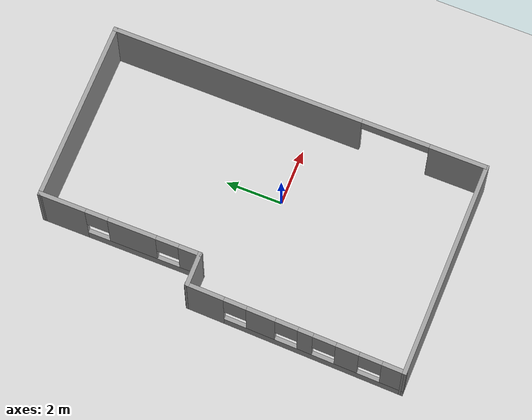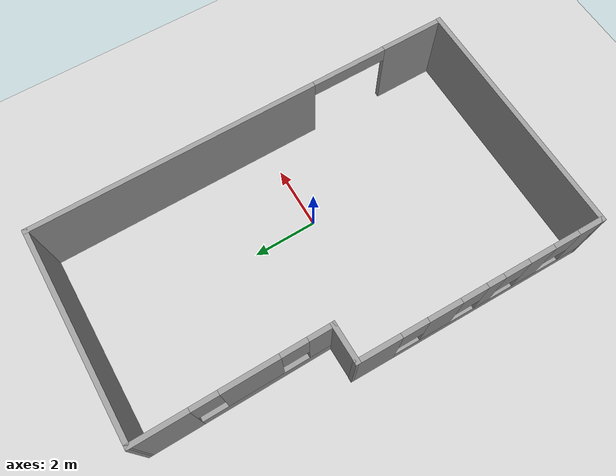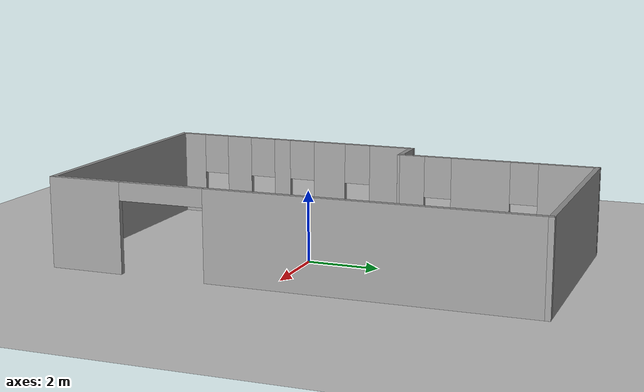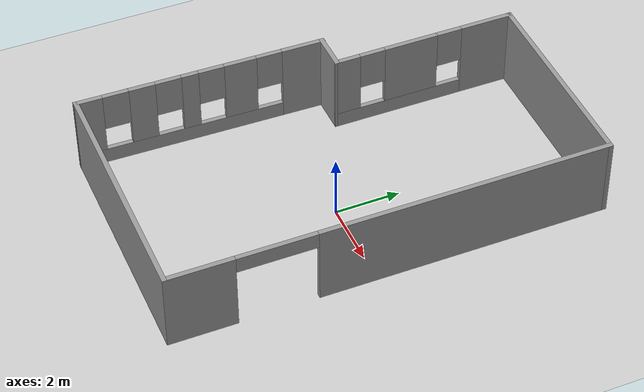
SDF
<sdf version="1.6">
 <world name="AulaGamma_homework2">
  <light name="sun" type="directional">
   <pose>0 0 10 0 -0 0</pose>
   <diffuse>0.8 0.8 0.8 1</diffuse>
   <specular>0.1 0.1 0.1 1</specular>
   <attenuation>
    <range>1000</range>
    <constant>0.9</constant>
    <linear>0.01</linear>
    <quadratic>0.001</quadratic>
   </attenuation>
   <direction>-0.5 0.5 -1</direction>
  </light>
  <model name="ground_plane">
   <static>1</static>
   <link name="link">
    <collision name="collision">
     <geometry><plane><normal>0 0 1</normal><size>100 100</size></plane></geometry>
     <surface><friction><ode><mu>100</mu><mu2>50</mu2></ode></friction></surface>
    </collision>
    <visual name="visual">
     <cast_shadows>0</cast_shadows>
     <geometry><plane><normal>0 0 1</normal><size>100 100</size></plane></geometry>
     <material>
      <script><uri>file://media/materials/scripts/gazebo.material</uri><name>Gazebo/Grey</name></script>
     </material>
    </visual>
   </link>
  </model>
  <gravity>0 0 -9.8</gravity>
  <magnetic_field>6e-06 2.3e-05 -4.2e-05</magnetic_field>
  <atmosphere type="adiabatic"/>
  <physics name="default_physics" default="0" type="ode">
   <max_step_size>0.001</max_step_size>
   <real_time_factor>1</real_time_factor>
   <real_time_update_rate>1000</real_time_update_rate>
  </physics>
  <scene><ambient>0.4 0.4 0.4 1</ambient><background>0.7 0.7 0.7 1</background><shadows>1</shadows></scene>
  <spherical_coordinates>
   <surface_model>EARTH_WGS84</surface_model>
   <latitude_deg>0</latitude_deg>
   <longitude_deg>0</longitude_deg>
   <elevation>0</elevation>
   <heading_deg>0</heading_deg>
  </spherical_coordinates>
  <model name="muri_aula_gamma">
   <pose>-0.930071 0.515969 0 0 -0 0</pose>
   <link name="Wall_10">
    <pose>-2.54777 3.82732 0 0 0 -1.57027</pose>
    <visual name="Wall_10_Visual_0">
     <pose>-2.07152 0 1.25 0 -0 0</pose>
     <geometry><box><size>1.70377 0.15 2.5</size></box></geometry>
     <material>
      <script><uri>file://media/materials/scripts/gazebo.material</uri><name>Gazebo/Grey</name></script>
      <ambient>1 1 1 1</ambient>
     </material>
    </visual>
    <collision name="Wall_10_Collision_0">
     <geometry><box><size>1.70377 0.15 2.5</size></box></geometry>
     <pose>-2.07152 0 1.25 0 -0 0</pose>
    </collision>
    <visual name="Wall_10_Visual_1">
     <pose>0.851884 0 0.25 0 -0 0</pose>
     <geometry><box><size>4.14304 0.15 0.5</size></box></geometry>
     <material>
      <script><uri>file://media/materials/scripts/gazebo.material</uri><name>Gazebo/Grey</name></script>
      <ambient>1 1 1 1</ambient>
     </material>
    </visual>
    <collision name="Wall_10_Collision_1">
     <geometry><box><size>4.14304 0.15 0.5</size></box></geometry>
     <pose>0.851884 0 0.25 0 -0 0</pose>
    </collision>
    <visual name="Wall_10_Visual_2">
     <pose>0.43961 0 1.5 0 -0 0</pose>
     <geometry><box><size>1.7185 0.15 2</size></box></geometry>
     <material>
      <script><uri>file://media/materials/scripts/gazebo.material</uri><name>Gazebo/Grey</name></script>
      <ambient>1 1 1 1</ambient>
     </material>
    </visual>
    <collision name="Wall_10_Collision_2">
     <geometry><box><size>1.7185 0.15 2</size></box></geometry>
     <pose>0.43961 0 1.5 0 -0 0</pose>
    </collision>
    <visual name="Wall_10_Visual_3">
     <pose>2.51113 0 1.5 0 -0 0</pose>
     <geometry><box><size>0.824549 0.15 2</size></box></geometry>
     <material>
      <script><uri>file://media/materials/scripts/gazebo.material</uri><name>Gazebo/Grey</name></script>
      <ambient>1 1 1 1</ambient>
     </material>
    </visual>
    <collision name="Wall_10_Collision_3">
     <geometry><box><size>0.824549 0.15 2</size></box></geometry>
     <pose>2.51113 0 1.5 0 -0 0</pose>
    </collision>
    <visual name="Wall_10_Visual_4">
     <pose>-0.819638 0 1.9 0 -0 0</pose>
     <geometry><box><size>0.8 0.15 1.2</size></box></geometry>
     <material>
      <script><uri>file://media/materials/scripts/gazebo.material</uri><name>Gazebo/Grey</name></script>
      <ambient>1 1 1 1</ambient>
     </material>
    </visual>
    <collision name="Wall_10_Collision_4">
     <geometry><box><size>0.8 0.15 1.2</size></box></geometry>
     <pose>-0.819638 0 1.9 0 -0 0</pose>
    </collision>
    <visual name="Wall_10_Visual_5">
     <pose>1.69886 0 1.9 0 -0 0</pose>
     <geometry><box><size>0.8 0.15 1.2</size></box></geometry>
     <material>
      <script><uri>file://media/materials/scripts/gazebo.material</uri><name>Gazebo/Grey</name></script>
      <ambient>1 1 1 1</ambient>
     </material>
    </visual>
    <collision name="Wall_10_Collision_5">
     <geometry><box><size>0.8 0.15 1.2</size></box></geometry>
     <pose>1.69886 0 1.9 0 -0 0</pose>
    </collision>
   </link>
   <link name="Wall_12">
    <collision name="Wall_12_Collision">
     <geometry><box><size>0.15 0.15 2.5</size></box></geometry>
     <pose>0 0 1.25 0 -0 0</pose>
    </collision>
    <visual name="Wall_12_Visual">
     <pose>0 0 1.25 0 -0 0</pose>
     <geometry><box><size>0.15 0.15 2.5</size></box></geometry>
     <material>
      <script><uri>file://media/materials/scripts/gazebo.material</uri><name>Gazebo/Grey</name></script>
      <ambient>1 1 1 1</ambient>
     </material>
    </visual>
    <pose>-3.64628 0.97891 0 0 -0 0</pose>
   </link>
   <link name="Wall_15">
    <collision name="Wall_15_Collision">
     <geometry><box><size>1.25 0.15 2.5</size></box></geometry>
     <pose>0 0 1.25 0 -0 0</pose>
    </collision>
    <visual name="Wall_15_Visual">
     <pose>0 0 1.25 0 -0 0</pose>
     <geometry><box><size>1.25 0.15 2.5</size></box></geometry>
     <material>
      <script><uri>file://media/materials/scripts/gazebo.material</uri><name>Gazebo/Grey</name></script>
      <ambient>1 1 1 1</ambient>
     </material>
    </visual>
    <pose>-3.09627 0.973939 0 0 0 -3.13255</pose>
   </link>
   <link name="Wall_3">
    <pose>-3.72277 -2.85265 0 0 0 -1.59081</pose>
    <visual name="Wall_3_Visual_0">
     <pose>-3.20857 0 1.25 0 -0 0</pose>
     <geometry><box><size>1.37764 0.15 2.5</size></box></geometry>
     <material>
      <script><uri>file://media/materials/scripts/gazebo.material</uri><name>Gazebo/Grey</name></script>
      <ambient>1 1 1 1</ambient>
     </material>
    </visual>
    <collision name="Wall_3_Collision_0">
     <geometry><box><size>1.37764 0.15 2.5</size></box></geometry>
     <pose>-3.20857 0 1.25 0 -0 0</pose>
    </collision>
    <visual name="Wall_3_Visual_1">
     <pose>0.68882 0 0.25 0 -0 0</pose>
     <geometry><box><size>6.41714 0.15 0.5</size></box></geometry>
     <material>
      <script><uri>file://media/materials/scripts/gazebo.material</uri><name>Gazebo/Grey</name></script>
      <ambient>1 1 1 1</ambient>
     </material>
    </visual>
    <collision name="Wall_3_Collision_1">
     <geometry><box><size>6.41714 0.15 0.5</size></box></geometry>
     <pose>0.68882 0 0.25 0 -0 0</pose>
    </collision>
    <visual name="Wall_3_Visual_2">
     <pose>-1.21045 0 1.5 0 -0 0</pose>
     <geometry><box><size>1.0186 0.15 2</size></box></geometry>
     <material>
      <script><uri>file://media/materials/scripts/gazebo.material</uri><name>Gazebo/Grey</name></script>
      <ambient>1 1 1 1</ambient>
     </material>
    </visual>
    <collision name="Wall_3_Collision_2">
     <geometry><box><size>1.0186 0.15 2</size></box></geometry>
     <pose>-1.21045 0 1.5 0 -0 0</pose>
    </collision>
    <visual name="Wall_3_Visual_3">
     <pose>0.364044 0 1.5 0 -0 0</pose>
     <geometry><box><size>0.530378 0.15 2</size></box></geometry>
     <material>
      <script><uri>file://media/materials/scripts/gazebo.material</uri><name>Gazebo/Grey</name></script>
      <ambient>1 1 1 1</ambient>
     </material>
    </visual>
    <collision name="Wall_3_Collision_3">
     <geometry><box><size>0.530378 0.15 2</size></box></geometry>
     <pose>0.364044 0 1.5 0 -0 0</pose>
    </collision>
    <visual name="Wall_3_Visual_4">
     <pose>1.83502 0 1.5 0 -0 0</pose>
     <geometry><box><size>0.811564 0.15 2</size></box></geometry>
     <material>
      <script><uri>file://media/materials/scripts/gazebo.material</uri><name>Gazebo/Grey</name></script>
      <ambient>1 1 1 1</ambient>
     </material>
    </visual>
    <collision name="Wall_3_Collision_4">
     <geometry><box><size>0.811564 0.15 2</size></box></geometry>
     <pose>1.83502 0 1.5 0 -0 0</pose>
    </collision>
    <visual name="Wall_3_Visual_5">
     <pose>3.46909 0 1.5 0 -0 0</pose>
     <geometry><box><size>0.856591 0.15 2</size></box></geometry>
     <material>
      <script><uri>file://media/materials/scripts/gazebo.material</uri><name>Gazebo/Grey</name></script>
      <ambient>1 1 1 1</ambient>
     </material>
    </visual>
    <collision name="Wall_3_Collision_5">
     <geometry><box><size>0.856591 0.15 2</size></box></geometry>
     <pose>3.46909 0 1.5 0 -0 0</pose>
    </collision>
    <visual name="Wall_3_Visual_6">
     <pose>-2.11975 0 1.9 0 -0 0</pose>
     <geometry><box><size>0.8 0.15 1.2</size></box></geometry>
     <material>
      <script><uri>file://media/materials/scripts/gazebo.material</uri><name>Gazebo/Grey</name></script>
      <ambient>1 1 1 1</ambient>
     </material>
    </visual>
    <collision name="Wall_3_Collision_6">
     <geometry><box><size>0.8 0.15 1.2</size></box></geometry>
     <pose>-2.11975 0 1.9 0 -0 0</pose>
    </collision>
    <visual name="Wall_3_Visual_7">
     <pose>-0.301145 0 1.9 0 -0 0</pose>
     <geometry><box><size>0.8 0.15 1.2</size></box></geometry>
     <material>
      <script><uri>file://media/materials/scripts/gazebo.material</uri><name>Gazebo/Grey</name></script>
      <ambient>1 1 1 1</ambient>
     </material>
    </visual>
    <collision name="Wall_3_Collision_7">
     <geometry><box><size>0.8 0.15 1.2</size></box></geometry>
     <pose>-0.301145 0 1.9 0 -0 0</pose>
    </collision>
    <visual name="Wall_3_Visual_8">
     <pose>1.02923 0 1.9 0 -0 0</pose>
     <geometry><box><size>0.8 0.15 1.2</size></box></geometry>
     <material>
      <script><uri>file://media/materials/scripts/gazebo.material</uri><name>Gazebo/Grey</name></script>
      <ambient>1 1 1 1</ambient>
     </material>
    </visual>
    <collision name="Wall_3_Collision_8">
     <geometry><box><size>0.8 0.15 1.2</size></box></geometry>
     <pose>1.02923 0 1.9 0 -0 0</pose>
    </collision>
    <visual name="Wall_3_Visual_9">
     <pose>2.6408 0 1.9 0 -0 0</pose>
     <geometry><box><size>0.8 0.15 1.2</size></box></geometry>
     <material>
      <script><uri>file://media/materials/scripts/gazebo.material</uri><name>Gazebo/Grey</name></script>
      <ambient>1 1 1 1</ambient>
     </material>
    </visual>
    <collision name="Wall_3_Collision_9">
     <geometry><box><size>0.8 0.15 1.2</size></box></geometry>
     <pose>2.6408 0 1.9 0 -0 0</pose>
    </collision>
   </link>
   <link name="Wall_4">
    <collision name="Wall_4_Collision">
     <geometry><box><size>7.75 0.15 2.5</size></box></geometry>
     <pose>0 0 1.25 0 -0 0</pose>
    </collision>
    <visual name="Wall_4_Visual">
     <pose>0 0 1.25 0 -0 0</pose>
     <geometry><box><size>7.75 0.15 2.5</size></box></geometry>
     <material>
      <script><uri>file://media/materials/scripts/gazebo.material</uri><name>Gazebo/Grey</name></script>
      <ambient>1 1 1 1</ambient>
     </material>
    </visual>
    <pose>0.000742 -6.67428 0 0 -0 0</pose>
   </link>
   <link name="Wall_5">
    <pose>3.80074 0.000723 0 0 -0 1.5708</pose>
    <visual name="Wall_5_Visual_0">
     <pose>-5.70598 0 1.25 0 -0 0</pose>
     <geometry><box><size>2.08804 0.15 2.5</size></box></geometry>
     <material>
      <script><uri>file://media/materials/scripts/gazebo.material</uri><name>Gazebo/Grey</name></script>
      <ambient>1 1 1 1</ambient>
     </material>
    </visual>
    <collision name="Wall_5_Collision_0">
     <geometry><box><size>2.08804 0.15 2.5</size></box></geometry>
     <pose>-5.70598 0 1.25 0 -0 0</pose>
    </collision>
    <visual name="Wall_5_Visual_1">
     <pose>2.2468 0 1.25 0 -0 0</pose>
     <geometry><box><size>9.00641 0.15 2.5</size></box></geometry>
     <material>
      <script><uri>file://media/materials/scripts/gazebo.material</uri><name>Gazebo/Grey</name></script>
      <ambient>1 1 1 1</ambient>
     </material>
    </visual>
    <collision name="Wall_5_Collision_1">
     <geometry><box><size>9.00641 0.15 2.5</size></box></geometry>
     <pose>2.2468 0 1.25 0 -0 0</pose>
    </collision>
    <visual name="Wall_5_Visual_2">
     <pose>-3.45919 0 2.25 0 -0 0</pose>
     <geometry><box><size>2.40556 0.15 0.5</size></box></geometry>
     <material>
      <script><uri>file://media/materials/scripts/gazebo.material</uri><name>Gazebo/Grey</name></script>
      <ambient>1 1 1 1</ambient>
     </material>
    </visual>
    <collision name="Wall_5_Collision_2">
     <geometry><box><size>2.40556 0.15 0.5</size></box></geometry>
     <pose>-3.45919 0 2.25 0 -0 0</pose>
    </collision>
   </link>
   <link name="Wall_6">
    <collision name="Wall_6_Collision">
     <geometry><box><size>6.5 0.15 2.5</size></box></geometry>
     <pose>0 0 1.25 0 -0 0</pose>
    </collision>
    <visual name="Wall_6_Visual">
     <pose>0 0 1.25 0 -0 0</pose>
     <geometry><box><size>6.5 0.15 2.5</size></box></geometry>
     <material>
      <script><uri>file://media/materials/scripts/gazebo.material</uri><name>Gazebo/Grey</name></script>
      <ambient>1 1 1 1</ambient>
     </material>
    </visual>
    <pose>0.625742 6.67572 0 0 -0 3.14159</pose>
   </link>
   <link name="Wall_7">
    <collision name="Wall_7_Collision">
     <geometry><box><size>0.15 0.15 2.5</size></box></geometry>
     <pose>0 0 1.25 0 -0 0</pose>
    </collision>
    <visual name="Wall_7_Visual">
     <pose>0 0 1.25 0 -0 0</pose>
     <geometry><box><size>0.15 0.15 2.5</size></box></geometry>
     <material>
      <script><uri>file://media/materials/scripts/gazebo.material</uri><name>Gazebo/Grey</name></script>
      <ambient>1 1 1 1</ambient>
     </material>
    </visual>
    <pose>-2.54926 6.67572 0 0 -0 0</pose>
   </link>
   <static>1</static>
  </model>
 </world>
</sdf>
